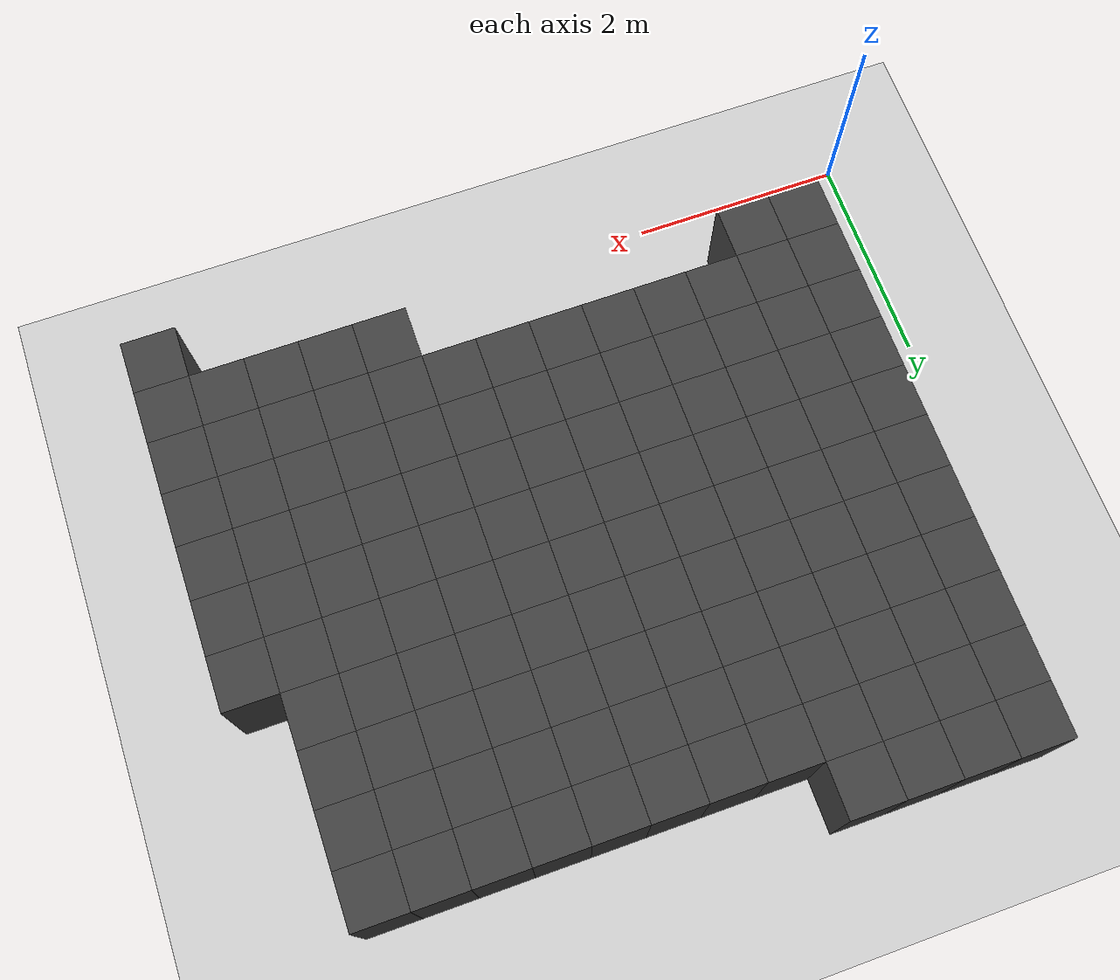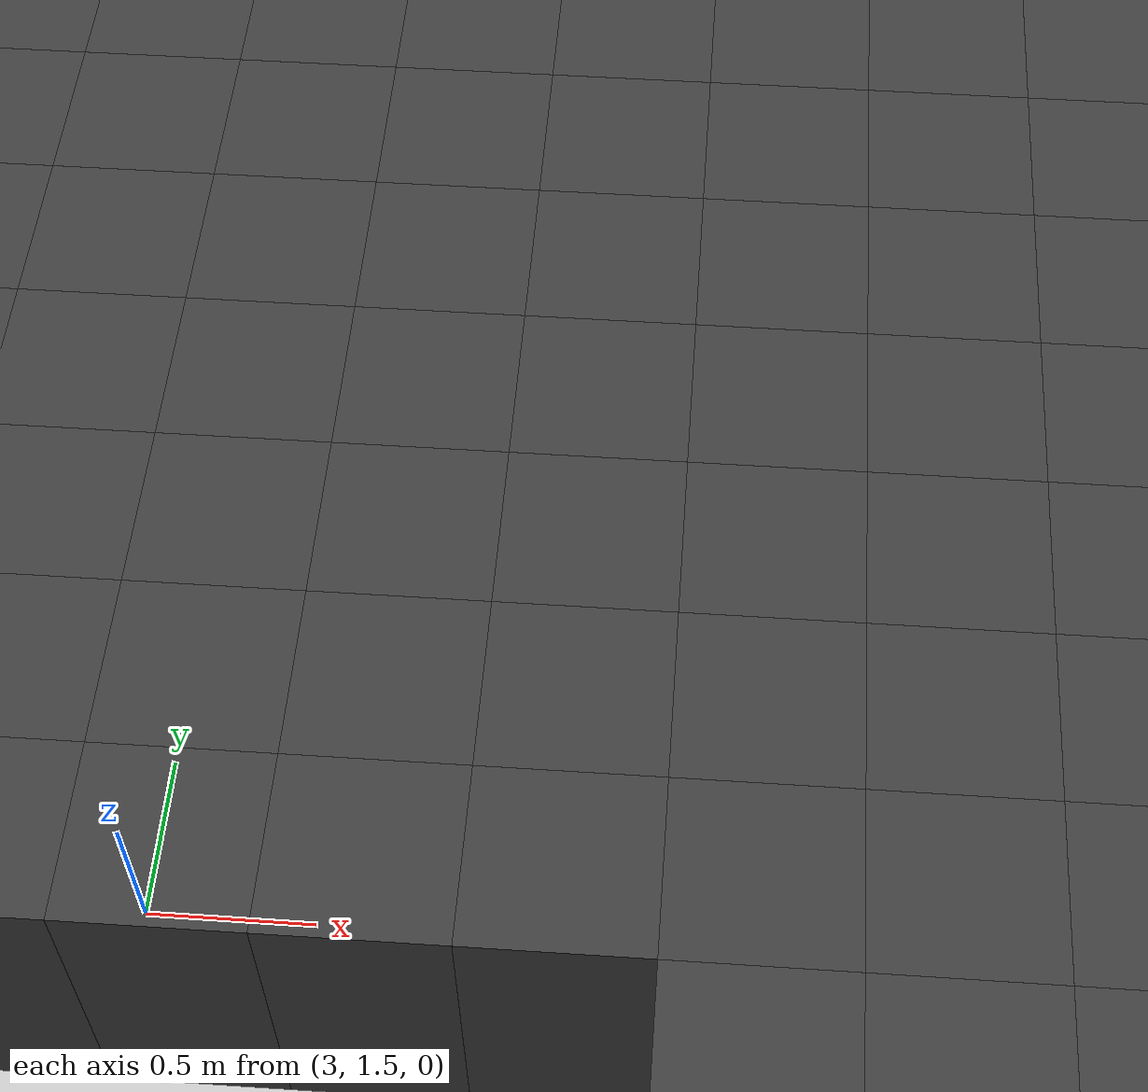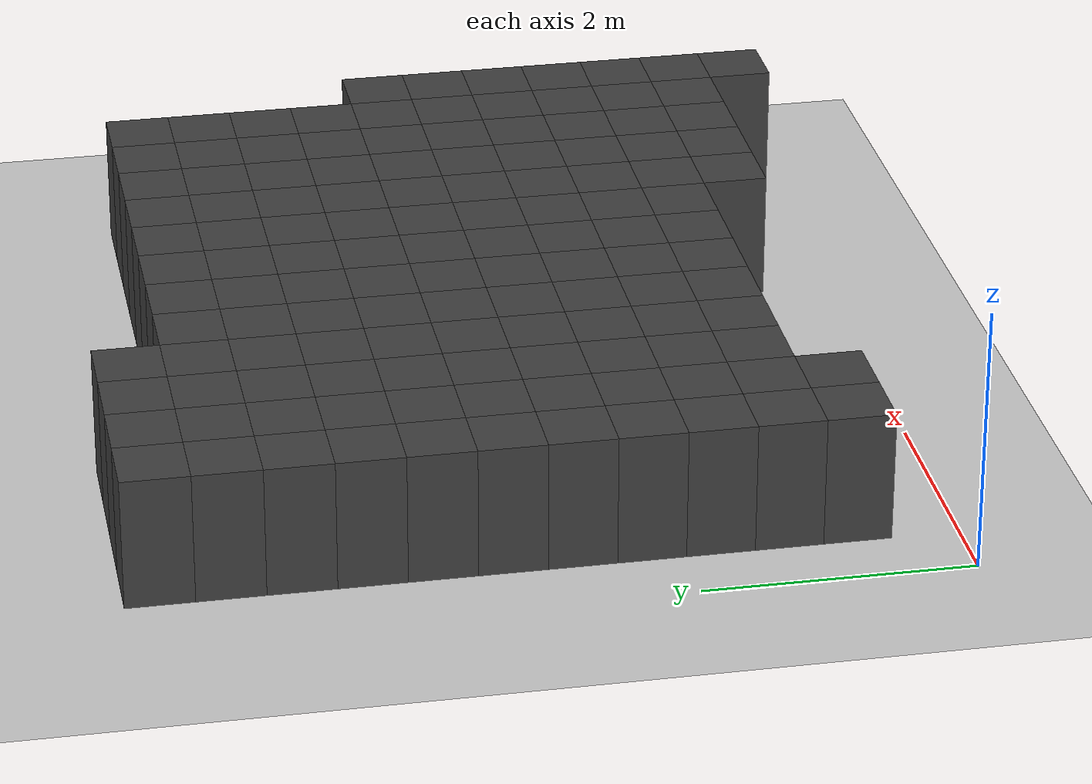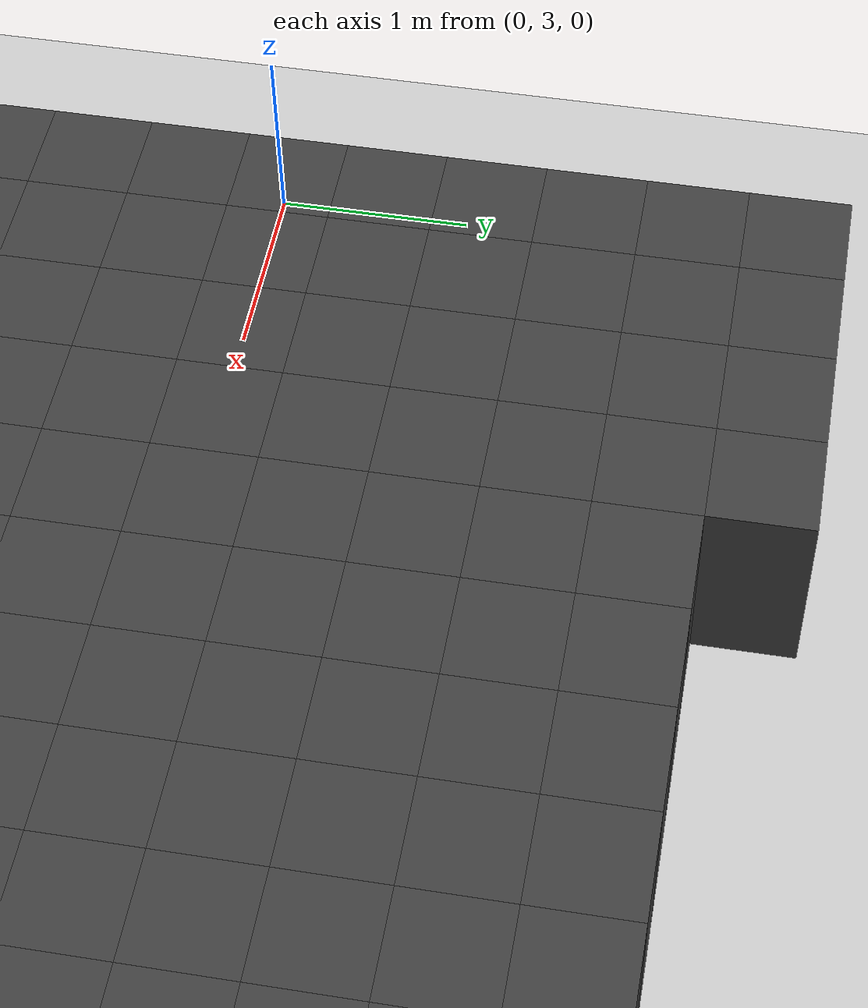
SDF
<sdf version="1.7">
 <world name="map_14802">
  <model name="ground_plane">
   <static>true</static>
   <link name="link">
    <collision name="collision">
     <geometry><plane><normal>0 0 1</normal><size>200 200</size></plane></geometry>
    </collision>
    <visual name="visual">
     <geometry><plane><normal>0 0 1</normal><size>200 200</size></plane></geometry>
     <material><ambient>0.8 0.8 0.8 1</ambient><diffuse>0.8 0.8 0.8 1</diffuse></material>
    </visual>
   </link>
  </model>
  <model name="maze_environment">
   <static>true</static>
   <link name="wall_469">
    <pose>0.750 5.750 0.500 0 0 0</pose>
    <collision name="col"><geometry><box><size>0.5 0.5 1.0</size></box></geometry></collision>
    <visual name="vis">
     <geometry><box><size>0.5 0.5 1.0</size></box></geometry>
     <material><ambient>0.15 0.15 0.15 1</ambient><diffuse>0.25 0.25 0.25 1</diffuse></material>
    </visual>
   </link>
   <link name="wall_470">
    <pose>1.250 5.750 0.500 0 0 0</pose>
    <collision name="col"><geometry><box><size>0.5 0.5 1.0</size></box></geometry></collision>
    <visual name="vis">
     <geometry><box><size>0.5 0.5 1.0</size></box></geometry>
     <material><ambient>0.15 0.15 0.15 1</ambient><diffuse>0.25 0.25 0.25 1</diffuse></material>
    </visual>
   </link>
   <link name="wall_471">
    <pose>1.750 5.750 0.500 0 0 0</pose>
    <collision name="col"><geometry><box><size>0.5 0.5 1.0</size></box></geometry></collision>
    <visual name="vis">
     <geometry><box><size>0.5 0.5 1.0</size></box></geometry>
     <material><ambient>0.15 0.15 0.15 1</ambient><diffuse>0.25 0.25 0.25 1</diffuse></material>
    </visual>
   </link>
   <link name="wall_472">
    <pose>2.250 5.750 0.500 0 0 0</pose>
    <collision name="col"><geometry><box><size>0.5 0.5 1.0</size></box></geometry></collision>
    <visual name="vis">
     <geometry><box><size>0.5 0.5 1.0</size></box></geometry>
     <material><ambient>0.15 0.15 0.15 1</ambient><diffuse>0.25 0.25 0.25 1</diffuse></material>
    </visual>
   </link>
   <link name="wall_502">
    <pose>0.750 5.250 0.500 0 0 0</pose>
    <collision name="col"><geometry><box><size>0.5 0.5 1.0</size></box></geometry></collision>
    <visual name="vis">
     <geometry><box><size>0.5 0.5 1.0</size></box></geometry>
     <material><ambient>0.15 0.15 0.15 1</ambient><diffuse>0.25 0.25 0.25 1</diffuse></material>
    </visual>
   </link>
   <link name="wall_503">
    <pose>1.250 5.250 0.500 0 0 0</pose>
    <collision name="col"><geometry><box><size>0.5 0.5 1.0</size></box></geometry></collision>
    <visual name="vis">
     <geometry><box><size>0.5 0.5 1.0</size></box></geometry>
     <material><ambient>0.15 0.15 0.15 1</ambient><diffuse>0.25 0.25 0.25 1</diffuse></material>
    </visual>
   </link>
   <link name="wall_504">
    <pose>1.750 5.250 0.500 0 0 0</pose>
    <collision name="col"><geometry><box><size>0.5 0.5 1.0</size></box></geometry></collision>
    <visual name="vis">
     <geometry><box><size>0.5 0.5 1.0</size></box></geometry>
     <material><ambient>0.15 0.15 0.15 1</ambient><diffuse>0.25 0.25 0.25 1</diffuse></material>
    </visual>
   </link>
   <link name="wall_505">
    <pose>2.250 5.250 0.500 0 0 0</pose>
    <collision name="col"><geometry><box><size>0.5 0.5 1.0</size></box></geometry></collision>
    <visual name="vis">
     <geometry><box><size>0.5 0.5 1.0</size></box></geometry>
     <material><ambient>0.15 0.15 0.15 1</ambient><diffuse>0.25 0.25 0.25 1</diffuse></material>
    </visual>
   </link>
   <link name="wall_506">
    <pose>2.750 5.250 0.500 0 0 0</pose>
    <collision name="col"><geometry><box><size>0.5 0.5 1.0</size></box></geometry></collision>
    <visual name="vis">
     <geometry><box><size>0.5 0.5 1.0</size></box></geometry>
     <material><ambient>0.15 0.15 0.15 1</ambient><diffuse>0.25 0.25 0.25 1</diffuse></material>
    </visual>
   </link>
   <link name="wall_507">
    <pose>3.250 5.250 0.500 0 0 0</pose>
    <collision name="col"><geometry><box><size>0.5 0.5 1.0</size></box></geometry></collision>
    <visual name="vis">
     <geometry><box><size>0.5 0.5 1.0</size></box></geometry>
     <material><ambient>0.15 0.15 0.15 1</ambient><diffuse>0.25 0.25 0.25 1</diffuse></material>
    </visual>
   </link>
   <link name="wall_508">
    <pose>3.750 5.250 0.500 0 0 0</pose>
    <collision name="col"><geometry><box><size>0.5 0.5 1.0</size></box></geometry></collision>
    <visual name="vis">
     <geometry><box><size>0.5 0.5 1.0</size></box></geometry>
     <material><ambient>0.15 0.15 0.15 1</ambient><diffuse>0.25 0.25 0.25 1</diffuse></material>
    </visual>
   </link>
   <link name="wall_509">
    <pose>4.250 5.250 0.500 0 0 0</pose>
    <collision name="col"><geometry><box><size>0.5 0.5 1.0</size></box></geometry></collision>
    <visual name="vis">
     <geometry><box><size>0.5 0.5 1.0</size></box></geometry>
     <material><ambient>0.15 0.15 0.15 1</ambient><diffuse>0.25 0.25 0.25 1</diffuse></material>
    </visual>
   </link>
   <link name="wall_510">
    <pose>4.750 5.250 0.500 0 0 0</pose>
    <collision name="col"><geometry><box><size>0.5 0.5 1.0</size></box></geometry></collision>
    <visual name="vis">
     <geometry><box><size>0.5 0.5 1.0</size></box></geometry>
     <material><ambient>0.15 0.15 0.15 1</ambient><diffuse>0.25 0.25 0.25 1</diffuse></material>
    </visual>
   </link>
   <link name="wall_511">
    <pose>5.250 5.250 0.500 0 0 0</pose>
    <collision name="col"><geometry><box><size>0.5 0.5 1.0</size></box></geometry></collision>
    <visual name="vis">
     <geometry><box><size>0.5 0.5 1.0</size></box></geometry>
     <material><ambient>0.15 0.15 0.15 1</ambient><diffuse>0.25 0.25 0.25 1</diffuse></material>
    </visual>
   </link>
   <link name="wall_512">
    <pose>5.750 5.250 0.500 0 0 0</pose>
    <collision name="col"><geometry><box><size>0.5 0.5 1.0</size></box></geometry></collision>
    <visual name="vis">
     <geometry><box><size>0.5 0.5 1.0</size></box></geometry>
     <material><ambient>0.15 0.15 0.15 1</ambient><diffuse>0.25 0.25 0.25 1</diffuse></material>
    </visual>
   </link>
   <link name="wall_513">
    <pose>6.250 5.250 0.500 0 0 0</pose>
    <collision name="col"><geometry><box><size>0.5 0.5 1.0</size></box></geometry></collision>
    <visual name="vis">
     <geometry><box><size>0.5 0.5 1.0</size></box></geometry>
     <material><ambient>0.15 0.15 0.15 1</ambient><diffuse>0.25 0.25 0.25 1</diffuse></material>
    </visual>
   </link>
   <link name="wall_542">
    <pose>0.750 4.750 0.500 0 0 0</pose>
    <collision name="col"><geometry><box><size>0.5 0.5 1.0</size></box></geometry></collision>
    <visual name="vis">
     <geometry><box><size>0.5 0.5 1.0</size></box></geometry>
     <material><ambient>0.15 0.15 0.15 1</ambient><diffuse>0.25 0.25 0.25 1</diffuse></material>
    </visual>
   </link>
   <link name="wall_543">
    <pose>1.250 4.750 0.500 0 0 0</pose>
    <collision name="col"><geometry><box><size>0.5 0.5 1.0</size></box></geometry></collision>
    <visual name="vis">
     <geometry><box><size>0.5 0.5 1.0</size></box></geometry>
     <material><ambient>0.15 0.15 0.15 1</ambient><diffuse>0.25 0.25 0.25 1</diffuse></material>
    </visual>
   </link>
   <link name="wall_544">
    <pose>1.750 4.750 0.500 0 0 0</pose>
    <collision name="col"><geometry><box><size>0.5 0.5 1.0</size></box></geometry></collision>
    <visual name="vis">
     <geometry><box><size>0.5 0.5 1.0</size></box></geometry>
     <material><ambient>0.15 0.15 0.15 1</ambient><diffuse>0.25 0.25 0.25 1</diffuse></material>
    </visual>
   </link>
   <link name="wall_545">
    <pose>2.250 4.750 0.500 0 0 0</pose>
    <collision name="col"><geometry><box><size>0.5 0.5 1.0</size></box></geometry></collision>
    <visual name="vis">
     <geometry><box><size>0.5 0.5 1.0</size></box></geometry>
     <material><ambient>0.15 0.15 0.15 1</ambient><diffuse>0.25 0.25 0.25 1</diffuse></material>
    </visual>
   </link>
   <link name="wall_546">
    <pose>2.750 4.750 0.500 0 0 0</pose>
    <collision name="col"><geometry><box><size>0.5 0.5 1.0</size></box></geometry></collision>
    <visual name="vis">
     <geometry><box><size>0.5 0.5 1.0</size></box></geometry>
     <material><ambient>0.15 0.15 0.15 1</ambient><diffuse>0.25 0.25 0.25 1</diffuse></material>
    </visual>
   </link>
   <link name="wall_547">
    <pose>3.250 4.750 0.500 0 0 0</pose>
    <collision name="col"><geometry><box><size>0.5 0.5 1.0</size></box></geometry></collision>
    <visual name="vis">
     <geometry><box><size>0.5 0.5 1.0</size></box></geometry>
     <material><ambient>0.15 0.15 0.15 1</ambient><diffuse>0.25 0.25 0.25 1</diffuse></material>
    </visual>
   </link>
   <link name="wall_548">
    <pose>3.750 4.750 0.500 0 0 0</pose>
    <collision name="col"><geometry><box><size>0.5 0.5 1.0</size></box></geometry></collision>
    <visual name="vis">
     <geometry><box><size>0.5 0.5 1.0</size></box></geometry>
     <material><ambient>0.15 0.15 0.15 1</ambient><diffuse>0.25 0.25 0.25 1</diffuse></material>
    </visual>
   </link>
   <link name="wall_549">
    <pose>4.250 4.750 0.500 0 0 0</pose>
    <collision name="col"><geometry><box><size>0.5 0.5 1.0</size></box></geometry></collision>
    <visual name="vis">
     <geometry><box><size>0.5 0.5 1.0</size></box></geometry>
     <material><ambient>0.15 0.15 0.15 1</ambient><diffuse>0.25 0.25 0.25 1</diffuse></material>
    </visual>
   </link>
   <link name="wall_550">
    <pose>4.750 4.750 0.500 0 0 0</pose>
    <collision name="col"><geometry><box><size>0.5 0.5 1.0</size></box></geometry></collision>
    <visual name="vis">
     <geometry><box><size>0.5 0.5 1.0</size></box></geometry>
     <material><ambient>0.15 0.15 0.15 1</ambient><diffuse>0.25 0.25 0.25 1</diffuse></material>
    </visual>
   </link>
   <link name="wall_551">
    <pose>5.250 4.750 0.500 0 0 0</pose>
    <collision name="col"><geometry><box><size>0.5 0.5 1.0</size></box></geometry></collision>
    <visual name="vis">
     <geometry><box><size>0.5 0.5 1.0</size></box></geometry>
     <material><ambient>0.15 0.15 0.15 1</ambient><diffuse>0.25 0.25 0.25 1</diffuse></material>
    </visual>
   </link>
   <link name="wall_552">
    <pose>5.750 4.750 0.500 0 0 0</pose>
    <collision name="col"><geometry><box><size>0.5 0.5 1.0</size></box></geometry></collision>
    <visual name="vis">
     <geometry><box><size>0.5 0.5 1.0</size></box></geometry>
     <material><ambient>0.15 0.15 0.15 1</ambient><diffuse>0.25 0.25 0.25 1</diffuse></material>
    </visual>
   </link>
   <link name="wall_553">
    <pose>6.250 4.750 0.500 0 0 0</pose>
    <collision name="col"><geometry><box><size>0.5 0.5 1.0</size></box></geometry></collision>
    <visual name="vis">
     <geometry><box><size>0.5 0.5 1.0</size></box></geometry>
     <material><ambient>0.15 0.15 0.15 1</ambient><diffuse>0.25 0.25 0.25 1</diffuse></material>
    </visual>
   </link>
   <link name="wall_582">
    <pose>0.750 4.250 0.500 0 0 0</pose>
    <collision name="col"><geometry><box><size>0.5 0.5 1.0</size></box></geometry></collision>
    <visual name="vis">
     <geometry><box><size>0.5 0.5 1.0</size></box></geometry>
     <material><ambient>0.15 0.15 0.15 1</ambient><diffuse>0.25 0.25 0.25 1</diffuse></material>
    </visual>
   </link>
   <link name="wall_583">
    <pose>1.250 4.250 0.500 0 0 0</pose>
    <collision name="col"><geometry><box><size>0.5 0.5 1.0</size></box></geometry></collision>
    <visual name="vis">
     <geometry><box><size>0.5 0.5 1.0</size></box></geometry>
     <material><ambient>0.15 0.15 0.15 1</ambient><diffuse>0.25 0.25 0.25 1</diffuse></material>
    </visual>
   </link>
   <link name="wall_584">
    <pose>1.750 4.250 0.500 0 0 0</pose>
    <collision name="col"><geometry><box><size>0.5 0.5 1.0</size></box></geometry></collision>
    <visual name="vis">
     <geometry><box><size>0.5 0.5 1.0</size></box></geometry>
     <material><ambient>0.15 0.15 0.15 1</ambient><diffuse>0.25 0.25 0.25 1</diffuse></material>
    </visual>
   </link>
   <link name="wall_585">
    <pose>2.250 4.250 0.500 0 0 0</pose>
    <collision name="col"><geometry><box><size>0.5 0.5 1.0</size></box></geometry></collision>
    <visual name="vis">
     <geometry><box><size>0.5 0.5 1.0</size></box></geometry>
     <material><ambient>0.15 0.15 0.15 1</ambient><diffuse>0.25 0.25 0.25 1</diffuse></material>
    </visual>
   </link>
   <link name="wall_586">
    <pose>2.750 4.250 0.500 0 0 0</pose>
    <collision name="col"><geometry><box><size>0.5 0.5 1.0</size></box></geometry></collision>
    <visual name="vis">
     <geometry><box><size>0.5 0.5 1.0</size></box></geometry>
     <material><ambient>0.15 0.15 0.15 1</ambient><diffuse>0.25 0.25 0.25 1</diffuse></material>
    </visual>
   </link>
   <link name="wall_587">
    <pose>3.250 4.250 0.500 0 0 0</pose>
    <collision name="col"><geometry><box><size>0.5 0.5 1.0</size></box></geometry></collision>
    <visual name="vis">
     <geometry><box><size>0.5 0.5 1.0</size></box></geometry>
     <material><ambient>0.15 0.15 0.15 1</ambient><diffuse>0.25 0.25 0.25 1</diffuse></material>
    </visual>
   </link>
   <link name="wall_588">
    <pose>3.750 4.250 0.500 0 0 0</pose>
    <collision name="col"><geometry><box><size>0.5 0.5 1.0</size></box></geometry></collision>
    <visual name="vis">
     <geometry><box><size>0.5 0.5 1.0</size></box></geometry>
     <material><ambient>0.15 0.15 0.15 1</ambient><diffuse>0.25 0.25 0.25 1</diffuse></material>
    </visual>
   </link>
   <link name="wall_589">
    <pose>4.250 4.250 0.500 0 0 0</pose>
    <collision name="col"><geometry><box><size>0.5 0.5 1.0</size></box></geometry></collision>
    <visual name="vis">
     <geometry><box><size>0.5 0.5 1.0</size></box></geometry>
     <material><ambient>0.15 0.15 0.15 1</ambient><diffuse>0.25 0.25 0.25 1</diffuse></material>
    </visual>
   </link>
   <link name="wall_590">
    <pose>4.750 4.250 0.500 0 0 0</pose>
    <collision name="col"><geometry><box><size>0.5 0.5 1.0</size></box></geometry></collision>
    <visual name="vis">
     <geometry><box><size>0.5 0.5 1.0</size></box></geometry>
     <material><ambient>0.15 0.15 0.15 1</ambient><diffuse>0.25 0.25 0.25 1</diffuse></material>
    </visual>
   </link>
   <link name="wall_591">
    <pose>5.250 4.250 0.500 0 0 0</pose>
    <collision name="col"><geometry><box><size>0.5 0.5 1.0</size></box></geometry></collision>
    <visual name="vis">
     <geometry><box><size>0.5 0.5 1.0</size></box></geometry>
     <material><ambient>0.15 0.15 0.15 1</ambient><diffuse>0.25 0.25 0.25 1</diffuse></material>
    </visual>
   </link>
   <link name="wall_592">
    <pose>5.750 4.250 0.500 0 0 0</pose>
    <collision name="col"><geometry><box><size>0.5 0.5 1.0</size></box></geometry></collision>
    <visual name="vis">
     <geometry><box><size>0.5 0.5 1.0</size></box></geometry>
     <material><ambient>0.15 0.15 0.15 1</ambient><diffuse>0.25 0.25 0.25 1</diffuse></material>
    </visual>
   </link>
   <link name="wall_593">
    <pose>6.250 4.250 0.500 0 0 0</pose>
    <collision name="col"><geometry><box><size>0.5 0.5 1.0</size></box></geometry></collision>
    <visual name="vis">
     <geometry><box><size>0.5 0.5 1.0</size></box></geometry>
     <material><ambient>0.15 0.15 0.15 1</ambient><diffuse>0.25 0.25 0.25 1</diffuse></material>
    </visual>
   </link>
   <link name="wall_622">
    <pose>0.750 3.750 0.500 0 0 0</pose>
    <collision name="col"><geometry><box><size>0.5 0.5 1.0</size></box></geometry></collision>
    <visual name="vis">
     <geometry><box><size>0.5 0.5 1.0</size></box></geometry>
     <material><ambient>0.15 0.15 0.15 1</ambient><diffuse>0.25 0.25 0.25 1</diffuse></material>
    </visual>
   </link>
   <link name="wall_623">
    <pose>1.250 3.750 0.500 0 0 0</pose>
    <collision name="col"><geometry><box><size>0.5 0.5 1.0</size></box></geometry></collision>
    <visual name="vis">
     <geometry><box><size>0.5 0.5 1.0</size></box></geometry>
     <material><ambient>0.15 0.15 0.15 1</ambient><diffuse>0.25 0.25 0.25 1</diffuse></material>
    </visual>
   </link>
   <link name="wall_624">
    <pose>1.750 3.750 0.500 0 0 0</pose>
    <collision name="col"><geometry><box><size>0.5 0.5 1.0</size></box></geometry></collision>
    <visual name="vis">
     <geometry><box><size>0.5 0.5 1.0</size></box></geometry>
     <material><ambient>0.15 0.15 0.15 1</ambient><diffuse>0.25 0.25 0.25 1</diffuse></material>
    </visual>
   </link>
   <link name="wall_625">
    <pose>2.250 3.750 0.500 0 0 0</pose>
    <collision name="col"><geometry><box><size>0.5 0.5 1.0</size></box></geometry></collision>
    <visual name="vis">
     <geometry><box><size>0.5 0.5 1.0</size></box></geometry>
     <material><ambient>0.15 0.15 0.15 1</ambient><diffuse>0.25 0.25 0.25 1</diffuse></material>
    </visual>
   </link>
   <link name="wall_626">
    <pose>2.750 3.750 0.500 0 0 0</pose>
    <collision name="col"><geometry><box><size>0.5 0.5 1.0</size></box></geometry></collision>
    <visual name="vis">
     <geometry><box><size>0.5 0.5 1.0</size></box></geometry>
     <material><ambient>0.15 0.15 0.15 1</ambient><diffuse>0.25 0.25 0.25 1</diffuse></material>
    </visual>
   </link>
   <link name="wall_627">
    <pose>3.250 3.750 0.500 0 0 0</pose>
    <collision name="col"><geometry><box><size>0.5 0.5 1.0</size></box></geometry></collision>
    <visual name="vis">
     <geometry><box><size>0.5 0.5 1.0</size></box></geometry>
     <material><ambient>0.15 0.15 0.15 1</ambient><diffuse>0.25 0.25 0.25 1</diffuse></material>
    </visual>
   </link>
   <link name="wall_628">
    <pose>3.750 3.750 0.500 0 0 0</pose>
    <collision name="col"><geometry><box><size>0.5 0.5 1.0</size></box></geometry></collision>
    <visual name="vis">
     <geometry><box><size>0.5 0.5 1.0</size></box></geometry>
     <material><ambient>0.15 0.15 0.15 1</ambient><diffuse>0.25 0.25 0.25 1</diffuse></material>
    </visual>
   </link>
   <link name="wall_629">
    <pose>4.250 3.750 0.500 0 0 0</pose>
    <collision name="col"><geometry><box><size>0.5 0.5 1.0</size></box></geometry></collision>
    <visual name="vis">
     <geometry><box><size>0.5 0.5 1.0</size></box></geometry>
     <material><ambient>0.15 0.15 0.15 1</ambient><diffuse>0.25 0.25 0.25 1</diffuse></material>
    </visual>
   </link>
   <link name="wall_630">
    <pose>4.750 3.750 0.500 0 0 0</pose>
    <collision name="col"><geometry><box><size>0.5 0.5 1.0</size></box></geometry></collision>
    <visual name="vis">
     <geometry><box><size>0.5 0.5 1.0</size></box></geometry>
     <material><ambient>0.15 0.15 0.15 1</ambient><diffuse>0.25 0.25 0.25 1</diffuse></material>
    </visual>
   </link>
   <link name="wall_631">
    <pose>5.250 3.750 0.500 0 0 0</pose>
    <collision name="col"><geometry><box><size>0.5 0.5 1.0</size></box></geometry></collision>
    <visual name="vis">
     <geometry><box><size>0.5 0.5 1.0</size></box></geometry>
     <material><ambient>0.15 0.15 0.15 1</ambient><diffuse>0.25 0.25 0.25 1</diffuse></material>
    </visual>
   </link>
   <link name="wall_632">
    <pose>5.750 3.750 0.500 0 0 0</pose>
    <collision name="col"><geometry><box><size>0.5 0.5 1.0</size></box></geometry></collision>
    <visual name="vis">
     <geometry><box><size>0.5 0.5 1.0</size></box></geometry>
     <material><ambient>0.15 0.15 0.15 1</ambient><diffuse>0.25 0.25 0.25 1</diffuse></material>
    </visual>
   </link>
   <link name="wall_633">
    <pose>6.250 3.750 0.500 0 0 0</pose>
    <collision name="col"><geometry><box><size>0.5 0.5 1.0</size></box></geometry></collision>
    <visual name="vis">
     <geometry><box><size>0.5 0.5 1.0</size></box></geometry>
     <material><ambient>0.15 0.15 0.15 1</ambient><diffuse>0.25 0.25 0.25 1</diffuse></material>
    </visual>
   </link>
   <link name="wall_663">
    <pose>0.750 3.250 0.500 0 0 0</pose>
    <collision name="col"><geometry><box><size>0.5 0.5 1.0</size></box></geometry></collision>
    <visual name="vis">
     <geometry><box><size>0.5 0.5 1.0</size></box></geometry>
     <material><ambient>0.15 0.15 0.15 1</ambient><diffuse>0.25 0.25 0.25 1</diffuse></material>
    </visual>
   </link>
   <link name="wall_664">
    <pose>1.250 3.250 0.500 0 0 0</pose>
    <collision name="col"><geometry><box><size>0.5 0.5 1.0</size></box></geometry></collision>
    <visual name="vis">
     <geometry><box><size>0.5 0.5 1.0</size></box></geometry>
     <material><ambient>0.15 0.15 0.15 1</ambient><diffuse>0.25 0.25 0.25 1</diffuse></material>
    </visual>
   </link>
   <link name="wall_665">
    <pose>1.750 3.250 0.500 0 0 0</pose>
    <collision name="col"><geometry><box><size>0.5 0.5 1.0</size></box></geometry></collision>
    <visual name="vis">
     <geometry><box><size>0.5 0.5 1.0</size></box></geometry>
     <material><ambient>0.15 0.15 0.15 1</ambient><diffuse>0.25 0.25 0.25 1</diffuse></material>
    </visual>
   </link>
   <link name="wall_666">
    <pose>2.250 3.250 0.500 0 0 0</pose>
    <collision name="col"><geometry><box><size>0.5 0.5 1.0</size></box></geometry></collision>
    <visual name="vis">
     <geometry><box><size>0.5 0.5 1.0</size></box></geometry>
     <material><ambient>0.15 0.15 0.15 1</ambient><diffuse>0.25 0.25 0.25 1</diffuse></material>
    </visual>
   </link>
   <link name="wall_667">
    <pose>2.750 3.250 0.500 0 0 0</pose>
    <collision name="col"><geometry><box><size>0.5 0.5 1.0</size></box></geometry></collision>
    <visual name="vis">
     <geometry><box><size>0.5 0.5 1.0</size></box></geometry>
     <material><ambient>0.15 0.15 0.15 1</ambient><diffuse>0.25 0.25 0.25 1</diffuse></material>
    </visual>
   </link>
   <link name="wall_668">
    <pose>3.250 3.250 0.500 0 0 0</pose>
    <collision name="col"><geometry><box><size>0.5 0.5 1.0</size></box></geometry></collision>
    <visual name="vis">
     <geometry><box><size>0.5 0.5 1.0</size></box></geometry>
     <material><ambient>0.15 0.15 0.15 1</ambient><diffuse>0.25 0.25 0.25 1</diffuse></material>
    </visual>
   </link>
   <link name="wall_669">
    <pose>3.750 3.250 0.500 0 0 0</pose>
    <collision name="col"><geometry><box><size>0.5 0.5 1.0</size></box></geometry></collision>
    <visual name="vis">
     <geometry><box><size>0.5 0.5 1.0</size></box></geometry>
     <material><ambient>0.15 0.15 0.15 1</ambient><diffuse>0.25 0.25 0.25 1</diffuse></material>
    </visual>
   </link>
   <link name="wall_670">
    <pose>4.250 3.250 0.500 0 0 0</pose>
    <collision name="col"><geometry><box><size>0.5 0.5 1.0</size></box></geometry></collision>
    <visual name="vis">
     <geometry><box><size>0.5 0.5 1.0</size></box></geometry>
     <material><ambient>0.15 0.15 0.15 1</ambient><diffuse>0.25 0.25 0.25 1</diffuse></material>
    </visual>
   </link>
   <link name="wall_671">
    <pose>4.750 3.250 0.500 0 0 0</pose>
    <collision name="col"><geometry><box><size>0.5 0.5 1.0</size></box></geometry></collision>
    <visual name="vis">
     <geometry><box><size>0.5 0.5 1.0</size></box></geometry>
     <material><ambient>0.15 0.15 0.15 1</ambient><diffuse>0.25 0.25 0.25 1</diffuse></material>
    </visual>
   </link>
   <link name="wall_672">
    <pose>5.250 3.250 0.500 0 0 0</pose>
    <collision name="col"><geometry><box><size>0.5 0.5 1.0</size></box></geometry></collision>
    <visual name="vis">
     <geometry><box><size>0.5 0.5 1.0</size></box></geometry>
     <material><ambient>0.15 0.15 0.15 1</ambient><diffuse>0.25 0.25 0.25 1</diffuse></material>
    </visual>
   </link>
   <link name="wall_673">
    <pose>5.750 3.250 0.500 0 0 0</pose>
    <collision name="col"><geometry><box><size>0.5 0.5 1.0</size></box></geometry></collision>
    <visual name="vis">
     <geometry><box><size>0.5 0.5 1.0</size></box></geometry>
     <material><ambient>0.15 0.15 0.15 1</ambient><diffuse>0.25 0.25 0.25 1</diffuse></material>
    </visual>
   </link>
   <link name="wall_674">
    <pose>6.250 3.250 0.500 0 0 0</pose>
    <collision name="col"><geometry><box><size>0.5 0.5 1.0</size></box></geometry></collision>
    <visual name="vis">
     <geometry><box><size>0.5 0.5 1.0</size></box></geometry>
     <material><ambient>0.15 0.15 0.15 1</ambient><diffuse>0.25 0.25 0.25 1</diffuse></material>
    </visual>
   </link>
   <link name="wall_675">
    <pose>6.750 3.250 0.500 0 0 0</pose>
    <collision name="col"><geometry><box><size>0.5 0.5 1.0</size></box></geometry></collision>
    <visual name="vis">
     <geometry><box><size>0.5 0.5 1.0</size></box></geometry>
     <material><ambient>0.15 0.15 0.15 1</ambient><diffuse>0.25 0.25 0.25 1</diffuse></material>
    </visual>
   </link>
   <link name="wall_703">
    <pose>0.750 2.750 0.500 0 0 0</pose>
    <collision name="col"><geometry><box><size>0.5 0.5 1.0</size></box></geometry></collision>
    <visual name="vis">
     <geometry><box><size>0.5 0.5 1.0</size></box></geometry>
     <material><ambient>0.15 0.15 0.15 1</ambient><diffuse>0.25 0.25 0.25 1</diffuse></material>
    </visual>
   </link>
   <link name="wall_704">
    <pose>1.250 2.750 0.500 0 0 0</pose>
    <collision name="col"><geometry><box><size>0.5 0.5 1.0</size></box></geometry></collision>
    <visual name="vis">
     <geometry><box><size>0.5 0.5 1.0</size></box></geometry>
     <material><ambient>0.15 0.15 0.15 1</ambient><diffuse>0.25 0.25 0.25 1</diffuse></material>
    </visual>
   </link>
   <link name="wall_705">
    <pose>1.750 2.750 0.500 0 0 0</pose>
    <collision name="col"><geometry><box><size>0.5 0.5 1.0</size></box></geometry></collision>
    <visual name="vis">
     <geometry><box><size>0.5 0.5 1.0</size></box></geometry>
     <material><ambient>0.15 0.15 0.15 1</ambient><diffuse>0.25 0.25 0.25 1</diffuse></material>
    </visual>
   </link>
   <link name="wall_706">
    <pose>2.250 2.750 0.500 0 0 0</pose>
    <collision name="col"><geometry><box><size>0.5 0.5 1.0</size></box></geometry></collision>
    <visual name="vis">
     <geometry><box><size>0.5 0.5 1.0</size></box></geometry>
     <material><ambient>0.15 0.15 0.15 1</ambient><diffuse>0.25 0.25 0.25 1</diffuse></material>
    </visual>
   </link>
   <link name="wall_707">
    <pose>2.750 2.750 0.500 0 0 0</pose>
    <collision name="col"><geometry><box><size>0.5 0.5 1.0</size></box></geometry></collision>
    <visual name="vis">
     <geometry><box><size>0.5 0.5 1.0</size></box></geometry>
     <material><ambient>0.15 0.15 0.15 1</ambient><diffuse>0.25 0.25 0.25 1</diffuse></material>
    </visual>
   </link>
   <link name="wall_708">
    <pose>3.250 2.750 0.500 0 0 0</pose>
    <collision name="col"><geometry><box><size>0.5 0.5 1.0</size></box></geometry></collision>
    <visual name="vis">
     <geometry><box><size>0.5 0.5 1.0</size></box></geometry>
     <material><ambient>0.15 0.15 0.15 1</ambient><diffuse>0.25 0.25 0.25 1</diffuse></material>
    </visual>
   </link>
   <link name="wall_709">
    <pose>3.750 2.750 0.500 0 0 0</pose>
    <collision name="col"><geometry><box><size>0.5 0.5 1.0</size></box></geometry></collision>
    <visual name="vis">
     <geometry><box><size>0.5 0.5 1.0</size></box></geometry>
     <material><ambient>0.15 0.15 0.15 1</ambient><diffuse>0.25 0.25 0.25 1</diffuse></material>
    </visual>
   </link>
   <link name="wall_710">
    <pose>4.250 2.750 0.500 0 0 0</pose>
    <collision name="col"><geometry><box><size>0.5 0.5 1.0</size></box></geometry></collision>
    <visual name="vis">
     <geometry><box><size>0.5 0.5 1.0</size></box></geometry>
     <material><ambient>0.15 0.15 0.15 1</ambient><diffuse>0.25 0.25 0.25 1</diffuse></material>
    </visual>
   </link>
   <link name="wall_711">
    <pose>4.750 2.750 0.500 0 0 0</pose>
    <collision name="col"><geometry><box><size>0.5 0.5 1.0</size></box></geometry></collision>
    <visual name="vis">
     <geometry><box><size>0.5 0.5 1.0</size></box></geometry>
     <material><ambient>0.15 0.15 0.15 1</ambient><diffuse>0.25 0.25 0.25 1</diffuse></material>
    </visual>
   </link>
   <link name="wall_712">
    <pose>5.250 2.750 0.500 0 0 0</pose>
    <collision name="col"><geometry><box><size>0.5 0.5 1.0</size></box></geometry></collision>
    <visual name="vis">
     <geometry><box><size>0.5 0.5 1.0</size></box></geometry>
     <material><ambient>0.15 0.15 0.15 1</ambient><diffuse>0.25 0.25 0.25 1</diffuse></material>
    </visual>
   </link>
   <link name="wall_713">
    <pose>5.750 2.750 0.500 0 0 0</pose>
    <collision name="col"><geometry><box><size>0.5 0.5 1.0</size></box></geometry></collision>
    <visual name="vis">
     <geometry><box><size>0.5 0.5 1.0</size></box></geometry>
     <material><ambient>0.15 0.15 0.15 1</ambient><diffuse>0.25 0.25 0.25 1</diffuse></material>
    </visual>
   </link>
   <link name="wall_714">
    <pose>6.250 2.750 0.500 0 0 0</pose>
    <collision name="col"><geometry><box><size>0.5 0.5 1.0</size></box></geometry></collision>
    <visual name="vis">
     <geometry><box><size>0.5 0.5 1.0</size></box></geometry>
     <material><ambient>0.15 0.15 0.15 1</ambient><diffuse>0.25 0.25 0.25 1</diffuse></material>
    </visual>
   </link>
   <link name="wall_715">
    <pose>6.750 2.750 0.500 0 0 0</pose>
    <collision name="col"><geometry><box><size>0.5 0.5 1.0</size></box></geometry></collision>
    <visual name="vis">
     <geometry><box><size>0.5 0.5 1.0</size></box></geometry>
     <material><ambient>0.15 0.15 0.15 1</ambient><diffuse>0.25 0.25 0.25 1</diffuse></material>
    </visual>
   </link>
   <link name="wall_742">
    <pose>0.750 2.250 0.500 0 0 0</pose>
    <collision name="col"><geometry><box><size>0.5 0.5 1.0</size></box></geometry></collision>
    <visual name="vis">
     <geometry><box><size>0.5 0.5 1.0</size></box></geometry>
     <material><ambient>0.15 0.15 0.15 1</ambient><diffuse>0.25 0.25 0.25 1</diffuse></material>
    </visual>
   </link>
   <link name="wall_743">
    <pose>1.250 2.250 0.500 0 0 0</pose>
    <collision name="col"><geometry><box><size>0.5 0.5 1.0</size></box></geometry></collision>
    <visual name="vis">
     <geometry><box><size>0.5 0.5 1.0</size></box></geometry>
     <material><ambient>0.15 0.15 0.15 1</ambient><diffuse>0.25 0.25 0.25 1</diffuse></material>
    </visual>
   </link>
   <link name="wall_744">
    <pose>1.750 2.250 0.500 0 0 0</pose>
    <collision name="col"><geometry><box><size>0.5 0.5 1.0</size></box></geometry></collision>
    <visual name="vis">
     <geometry><box><size>0.5 0.5 1.0</size></box></geometry>
     <material><ambient>0.15 0.15 0.15 1</ambient><diffuse>0.25 0.25 0.25 1</diffuse></material>
    </visual>
   </link>
   <link name="wall_745">
    <pose>2.250 2.250 0.500 0 0 0</pose>
    <collision name="col"><geometry><box><size>0.5 0.5 1.0</size></box></geometry></collision>
    <visual name="vis">
     <geometry><box><size>0.5 0.5 1.0</size></box></geometry>
     <material><ambient>0.15 0.15 0.15 1</ambient><diffuse>0.25 0.25 0.25 1</diffuse></material>
    </visual>
   </link>
   <link name="wall_746">
    <pose>2.750 2.250 0.500 0 0 0</pose>
    <collision name="col"><geometry><box><size>0.5 0.5 1.0</size></box></geometry></collision>
    <visual name="vis">
     <geometry><box><size>0.5 0.5 1.0</size></box></geometry>
     <material><ambient>0.15 0.15 0.15 1</ambient><diffuse>0.25 0.25 0.25 1</diffuse></material>
    </visual>
   </link>
   <link name="wall_747">
    <pose>3.250 2.250 0.500 0 0 0</pose>
    <collision name="col"><geometry><box><size>0.5 0.5 1.0</size></box></geometry></collision>
    <visual name="vis">
     <geometry><box><size>0.5 0.5 1.0</size></box></geometry>
     <material><ambient>0.15 0.15 0.15 1</ambient><diffuse>0.25 0.25 0.25 1</diffuse></material>
    </visual>
   </link>
   <link name="wall_748">
    <pose>3.750 2.250 0.500 0 0 0</pose>
    <collision name="col"><geometry><box><size>0.5 0.5 1.0</size></box></geometry></collision>
    <visual name="vis">
     <geometry><box><size>0.5 0.5 1.0</size></box></geometry>
     <material><ambient>0.15 0.15 0.15 1</ambient><diffuse>0.25 0.25 0.25 1</diffuse></material>
    </visual>
   </link>
   <link name="wall_749">
    <pose>4.250 2.250 0.500 0 0 0</pose>
    <collision name="col"><geometry><box><size>0.5 0.5 1.0</size></box></geometry></collision>
    <visual name="vis">
     <geometry><box><size>0.5 0.5 1.0</size></box></geometry>
     <material><ambient>0.15 0.15 0.15 1</ambient><diffuse>0.25 0.25 0.25 1</diffuse></material>
    </visual>
   </link>
   <link name="wall_750">
    <pose>4.750 2.250 0.500 0 0 0</pose>
    <collision name="col"><geometry><box><size>0.5 0.5 1.0</size></box></geometry></collision>
    <visual name="vis">
     <geometry><box><size>0.5 0.5 1.0</size></box></geometry>
     <material><ambient>0.15 0.15 0.15 1</ambient><diffuse>0.25 0.25 0.25 1</diffuse></material>
    </visual>
   </link>
   <link name="wall_751">
    <pose>5.250 2.250 0.500 0 0 0</pose>
    <collision name="col"><geometry><box><size>0.5 0.5 1.0</size></box></geometry></collision>
    <visual name="vis">
     <geometry><box><size>0.5 0.5 1.0</size></box></geometry>
     <material><ambient>0.15 0.15 0.15 1</ambient><diffuse>0.25 0.25 0.25 1</diffuse></material>
    </visual>
   </link>
   <link name="wall_752">
    <pose>5.750 2.250 0.500 0 0 0</pose>
    <collision name="col"><geometry><box><size>0.5 0.5 1.0</size></box></geometry></collision>
    <visual name="vis">
     <geometry><box><size>0.5 0.5 1.0</size></box></geometry>
     <material><ambient>0.15 0.15 0.15 1</ambient><diffuse>0.25 0.25 0.25 1</diffuse></material>
    </visual>
   </link>
   <link name="wall_753">
    <pose>6.250 2.250 0.500 0 0 0</pose>
    <collision name="col"><geometry><box><size>0.5 0.5 1.0</size></box></geometry></collision>
    <visual name="vis">
     <geometry><box><size>0.5 0.5 1.0</size></box></geometry>
     <material><ambient>0.15 0.15 0.15 1</ambient><diffuse>0.25 0.25 0.25 1</diffuse></material>
    </visual>
   </link>
   <link name="wall_754">
    <pose>6.750 2.250 0.500 0 0 0</pose>
    <collision name="col"><geometry><box><size>0.5 0.5 1.0</size></box></geometry></collision>
    <visual name="vis">
     <geometry><box><size>0.5 0.5 1.0</size></box></geometry>
     <material><ambient>0.15 0.15 0.15 1</ambient><diffuse>0.25 0.25 0.25 1</diffuse></material>
    </visual>
   </link>
   <link name="wall_779">
    <pose>0.750 1.750 0.500 0 0 0</pose>
    <collision name="col"><geometry><box><size>0.5 0.5 1.0</size></box></geometry></collision>
    <visual name="vis">
     <geometry><box><size>0.5 0.5 1.0</size></box></geometry>
     <material><ambient>0.15 0.15 0.15 1</ambient><diffuse>0.25 0.25 0.25 1</diffuse></material>
    </visual>
   </link>
   <link name="wall_780">
    <pose>1.250 1.750 0.500 0 0 0</pose>
    <collision name="col"><geometry><box><size>0.5 0.5 1.0</size></box></geometry></collision>
    <visual name="vis">
     <geometry><box><size>0.5 0.5 1.0</size></box></geometry>
     <material><ambient>0.15 0.15 0.15 1</ambient><diffuse>0.25 0.25 0.25 1</diffuse></material>
    </visual>
   </link>
   <link name="wall_781">
    <pose>1.750 1.750 0.500 0 0 0</pose>
    <collision name="col"><geometry><box><size>0.5 0.5 1.0</size></box></geometry></collision>
    <visual name="vis">
     <geometry><box><size>0.5 0.5 1.0</size></box></geometry>
     <material><ambient>0.15 0.15 0.15 1</ambient><diffuse>0.25 0.25 0.25 1</diffuse></material>
    </visual>
   </link>
   <link name="wall_782">
    <pose>2.250 1.750 0.500 0 0 0</pose>
    <collision name="col"><geometry><box><size>0.5 0.5 1.0</size></box></geometry></collision>
    <visual name="vis">
     <geometry><box><size>0.5 0.5 1.0</size></box></geometry>
     <material><ambient>0.15 0.15 0.15 1</ambient><diffuse>0.25 0.25 0.25 1</diffuse></material>
    </visual>
   </link>
   <link name="wall_783">
    <pose>2.750 1.750 0.500 0 0 0</pose>
    <collision name="col"><geometry><box><size>0.5 0.5 1.0</size></box></geometry></collision>
    <visual name="vis">
     <geometry><box><size>0.5 0.5 1.0</size></box></geometry>
     <material><ambient>0.15 0.15 0.15 1</ambient><diffuse>0.25 0.25 0.25 1</diffuse></material>
    </visual>
   </link>
   <link name="wall_784">
    <pose>3.250 1.750 0.500 0 0 0</pose>
    <collision name="col"><geometry><box><size>0.5 0.5 1.0</size></box></geometry></collision>
    <visual name="vis">
     <geometry><box><size>0.5 0.5 1.0</size></box></geometry>
     <material><ambient>0.15 0.15 0.15 1</ambient><diffuse>0.25 0.25 0.25 1</diffuse></material>
    </visual>
   </link>
   <link name="wall_785">
    <pose>3.750 1.750 0.500 0 0 0</pose>
    <collision name="col"><geometry><box><size>0.5 0.5 1.0</size></box></geometry></collision>
    <visual name="vis">
     <geometry><box><size>0.5 0.5 1.0</size></box></geometry>
     <material><ambient>0.15 0.15 0.15 1</ambient><diffuse>0.25 0.25 0.25 1</diffuse></material>
    </visual>
   </link>
   <link name="wall_786">
    <pose>4.250 1.750 0.500 0 0 0</pose>
    <collision name="col"><geometry><box><size>0.5 0.5 1.0</size></box></geometry></collision>
    <visual name="vis">
     <geometry><box><size>0.5 0.5 1.0</size></box></geometry>
     <material><ambient>0.15 0.15 0.15 1</ambient><diffuse>0.25 0.25 0.25 1</diffuse></material>
    </visual>
   </link>
   <link name="wall_787">
    <pose>4.750 1.750 0.500 0 0 0</pose>
    <collision name="col"><geometry><box><size>0.5 0.5 1.0</size></box></geometry></collision>
    <visual name="vis">
     <geometry><box><size>0.5 0.5 1.0</size></box></geometry>
     <material><ambient>0.15 0.15 0.15 1</ambient><diffuse>0.25 0.25 0.25 1</diffuse></material>
    </visual>
   </link>
   <link name="wall_788">
    <pose>5.250 1.750 0.500 0 0 0</pose>
    <collision name="col"><geometry><box><size>0.5 0.5 1.0</size></box></geometry></collision>
    <visual name="vis">
     <geometry><box><size>0.5 0.5 1.0</size></box></geometry>
     <material><ambient>0.15 0.15 0.15 1</ambient><diffuse>0.25 0.25 0.25 1</diffuse></material>
    </visual>
   </link>
   <link name="wall_789">
    <pose>5.750 1.750 0.500 0 0 0</pose>
    <collision name="col"><geometry><box><size>0.5 0.5 1.0</size></box></geometry></collision>
    <visual name="vis">
     <geometry><box><size>0.5 0.5 1.0</size></box></geometry>
     <material><ambient>0.15 0.15 0.15 1</ambient><diffuse>0.25 0.25 0.25 1</diffuse></material>
    </visual>
   </link>
   <link name="wall_790">
    <pose>6.250 1.750 0.500 0 0 0</pose>
    <collision name="col"><geometry><box><size>0.5 0.5 1.0</size></box></geometry></collision>
    <visual name="vis">
     <geometry><box><size>0.5 0.5 1.0</size></box></geometry>
     <material><ambient>0.15 0.15 0.15 1</ambient><diffuse>0.25 0.25 0.25 1</diffuse></material>
    </visual>
   </link>
   <link name="wall_791">
    <pose>6.750 1.750 0.500 0 0 0</pose>
    <collision name="col"><geometry><box><size>0.5 0.5 1.0</size></box></geometry></collision>
    <visual name="vis">
     <geometry><box><size>0.5 0.5 1.0</size></box></geometry>
     <material><ambient>0.15 0.15 0.15 1</ambient><diffuse>0.25 0.25 0.25 1</diffuse></material>
    </visual>
   </link>
   <link name="wall_816">
    <pose>0.750 1.250 0.500 0 0 0</pose>
    <collision name="col"><geometry><box><size>0.5 0.5 1.0</size></box></geometry></collision>
    <visual name="vis">
     <geometry><box><size>0.5 0.5 1.0</size></box></geometry>
     <material><ambient>0.15 0.15 0.15 1</ambient><diffuse>0.25 0.25 0.25 1</diffuse></material>
    </visual>
   </link>
   <link name="wall_817">
    <pose>1.250 1.250 0.500 0 0 0</pose>
    <collision name="col"><geometry><box><size>0.5 0.5 1.0</size></box></geometry></collision>
    <visual name="vis">
     <geometry><box><size>0.5 0.5 1.0</size></box></geometry>
     <material><ambient>0.15 0.15 0.15 1</ambient><diffuse>0.25 0.25 0.25 1</diffuse></material>
    </visual>
   </link>
   <link name="wall_818">
    <pose>1.750 1.250 0.500 0 0 0</pose>
    <collision name="col"><geometry><box><size>0.5 0.5 1.0</size></box></geometry></collision>
    <visual name="vis">
     <geometry><box><size>0.5 0.5 1.0</size></box></geometry>
     <material><ambient>0.15 0.15 0.15 1</ambient><diffuse>0.25 0.25 0.25 1</diffuse></material>
    </visual>
   </link>
   <link name="wall_819">
    <pose>2.250 1.250 0.500 0 0 0</pose>
    <collision name="col"><geometry><box><size>0.5 0.5 1.0</size></box></geometry></collision>
    <visual name="vis">
     <geometry><box><size>0.5 0.5 1.0</size></box></geometry>
     <material><ambient>0.15 0.15 0.15 1</ambient><diffuse>0.25 0.25 0.25 1</diffuse></material>
    </visual>
   </link>
   <link name="wall_820">
    <pose>2.750 1.250 0.500 0 0 0</pose>
    <collision name="col"><geometry><box><size>0.5 0.5 1.0</size></box></geometry></collision>
    <visual name="vis">
     <geometry><box><size>0.5 0.5 1.0</size></box></geometry>
     <material><ambient>0.15 0.15 0.15 1</ambient><diffuse>0.25 0.25 0.25 1</diffuse></material>
    </visual>
   </link>
   <link name="wall_821">
    <pose>3.250 1.250 0.500 0 0 0</pose>
    <collision name="col"><geometry><box><size>0.5 0.5 1.0</size></box></geometry></collision>
    <visual name="vis">
     <geometry><box><size>0.5 0.5 1.0</size></box></geometry>
     <material><ambient>0.15 0.15 0.15 1</ambient><diffuse>0.25 0.25 0.25 1</diffuse></material>
    </visual>
   </link>
   <link name="wall_822">
    <pose>3.750 1.250 0.500 0 0 0</pose>
    <collision name="col"><geometry><box><size>0.5 0.5 1.0</size></box></geometry></collision>
    <visual name="vis">
     <geometry><box><size>0.5 0.5 1.0</size></box></geometry>
     <material><ambient>0.15 0.15 0.15 1</ambient><diffuse>0.25 0.25 0.25 1</diffuse></material>
    </visual>
   </link>
   <link name="wall_823">
    <pose>4.250 1.250 0.500 0 0 0</pose>
    <collision name="col"><geometry><box><size>0.5 0.5 1.0</size></box></geometry></collision>
    <visual name="vis">
     <geometry><box><size>0.5 0.5 1.0</size></box></geometry>
     <material><ambient>0.15 0.15 0.15 1</ambient><diffuse>0.25 0.25 0.25 1</diffuse></material>
    </visual>
   </link>
   <link name="wall_824">
    <pose>4.750 1.250 0.500 0 0 0</pose>
    <collision name="col"><geometry><box><size>0.5 0.5 1.0</size></box></geometry></collision>
    <visual name="vis">
     <geometry><box><size>0.5 0.5 1.0</size></box></geometry>
     <material><ambient>0.15 0.15 0.15 1</ambient><diffuse>0.25 0.25 0.25 1</diffuse></material>
    </visual>
   </link>
   <link name="wall_825">
    <pose>5.250 1.250 0.500 0 0 0</pose>
    <collision name="col"><geometry><box><size>0.5 0.5 1.0</size></box></geometry></collision>
    <visual name="vis">
     <geometry><box><size>0.5 0.5 1.0</size></box></geometry>
     <material><ambient>0.15 0.15 0.15 1</ambient><diffuse>0.25 0.25 0.25 1</diffuse></material>
    </visual>
   </link>
   <link name="wall_826">
    <pose>5.750 1.250 0.500 0 0 0</pose>
    <collision name="col"><geometry><box><size>0.5 0.5 1.0</size></box></geometry></collision>
    <visual name="vis">
     <geometry><box><size>0.5 0.5 1.0</size></box></geometry>
     <material><ambient>0.15 0.15 0.15 1</ambient><diffuse>0.25 0.25 0.25 1</diffuse></material>
    </visual>
   </link>
   <link name="wall_827">
    <pose>6.250 1.250 0.500 0 0 0</pose>
    <collision name="col"><geometry><box><size>0.5 0.5 1.0</size></box></geometry></collision>
    <visual name="vis">
     <geometry><box><size>0.5 0.5 1.0</size></box></geometry>
     <material><ambient>0.15 0.15 0.15 1</ambient><diffuse>0.25 0.25 0.25 1</diffuse></material>
    </visual>
   </link>
   <link name="wall_828">
    <pose>6.750 1.250 0.500 0 0 0</pose>
    <collision name="col"><geometry><box><size>0.5 0.5 1.0</size></box></geometry></collision>
    <visual name="vis">
     <geometry><box><size>0.5 0.5 1.0</size></box></geometry>
     <material><ambient>0.15 0.15 0.15 1</ambient><diffuse>0.25 0.25 0.25 1</diffuse></material>
    </visual>
   </link>
   <link name="wall_853">
    <pose>0.750 0.750 0.500 0 0 0</pose>
    <collision name="col"><geometry><box><size>0.5 0.5 1.0</size></box></geometry></collision>
    <visual name="vis">
     <geometry><box><size>0.5 0.5 1.0</size></box></geometry>
     <material><ambient>0.15 0.15 0.15 1</ambient><diffuse>0.25 0.25 0.25 1</diffuse></material>
    </visual>
   </link>
   <link name="wall_854">
    <pose>1.250 0.750 0.500 0 0 0</pose>
    <collision name="col"><geometry><box><size>0.5 0.5 1.0</size></box></geometry></collision>
    <visual name="vis">
     <geometry><box><size>0.5 0.5 1.0</size></box></geometry>
     <material><ambient>0.15 0.15 0.15 1</ambient><diffuse>0.25 0.25 0.25 1</diffuse></material>
    </visual>
   </link>
   <link name="wall_855">
    <pose>4.750 0.750 0.500 0 0 0</pose>
    <collision name="col"><geometry><box><size>0.5 0.5 1.0</size></box></geometry></collision>
    <visual name="vis">
     <geometry><box><size>0.5 0.5 1.0</size></box></geometry>
     <material><ambient>0.15 0.15 0.15 1</ambient><diffuse>0.25 0.25 0.25 1</diffuse></material>
    </visual>
   </link>
   <link name="wall_856">
    <pose>5.250 0.750 0.500 0 0 0</pose>
    <collision name="col"><geometry><box><size>0.5 0.5 1.0</size></box></geometry></collision>
    <visual name="vis">
     <geometry><box><size>0.5 0.5 1.0</size></box></geometry>
     <material><ambient>0.15 0.15 0.15 1</ambient><diffuse>0.25 0.25 0.25 1</diffuse></material>
    </visual>
   </link>
   <link name="wall_857">
    <pose>5.750 0.750 0.500 0 0 0</pose>
    <collision name="col"><geometry><box><size>0.5 0.5 1.0</size></box></geometry></collision>
    <visual name="vis">
     <geometry><box><size>0.5 0.5 1.0</size></box></geometry>
     <material><ambient>0.15 0.15 0.15 1</ambient><diffuse>0.25 0.25 0.25 1</diffuse></material>
    </visual>
   </link>
   <link name="wall_858">
    <pose>6.250 0.750 0.500 0 0 0</pose>
    <collision name="col"><geometry><box><size>0.5 0.5 1.0</size></box></geometry></collision>
    <visual name="vis">
     <geometry><box><size>0.5 0.5 1.0</size></box></geometry>
     <material><ambient>0.15 0.15 0.15 1</ambient><diffuse>0.25 0.25 0.25 1</diffuse></material>
    </visual>
   </link>
   <link name="wall_859">
    <pose>6.750 0.750 0.500 0 0 0</pose>
    <collision name="col"><geometry><box><size>0.5 0.5 1.0</size></box></geometry></collision>
    <visual name="vis">
     <geometry><box><size>0.5 0.5 1.0</size></box></geometry>
     <material><ambient>0.15 0.15 0.15 1</ambient><diffuse>0.25 0.25 0.25 1</diffuse></material>
    </visual>
   </link>
   <link name="wall_890">
    <pose>6.750 0.250 0.500 0 0 0</pose>
    <collision name="col"><geometry><box><size>0.5 0.5 1.0</size></box></geometry></collision>
    <visual name="vis">
     <geometry><box><size>0.5 0.5 1.0</size></box></geometry>
     <material><ambient>0.15 0.15 0.15 1</ambient><diffuse>0.25 0.25 0.25 1</diffuse></material>
    </visual>
   </link>
  </model>
 </world>
</sdf>
